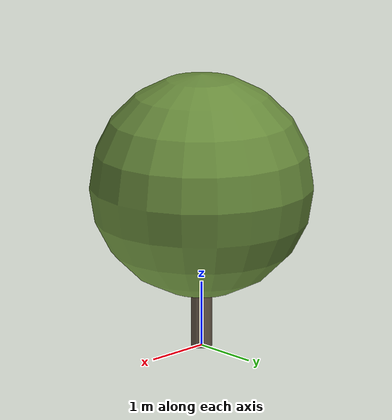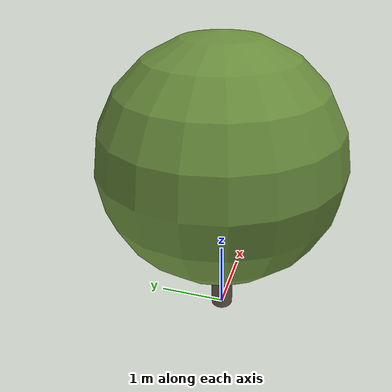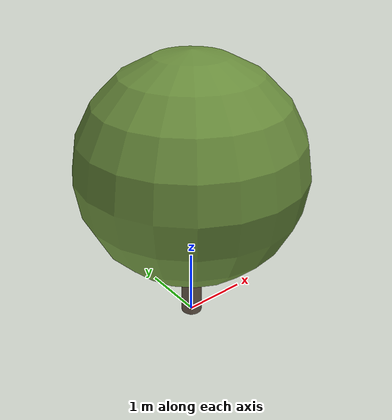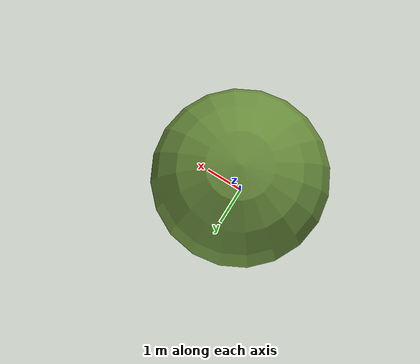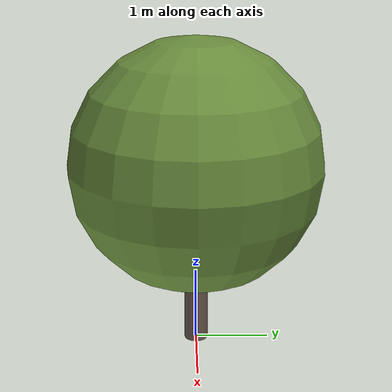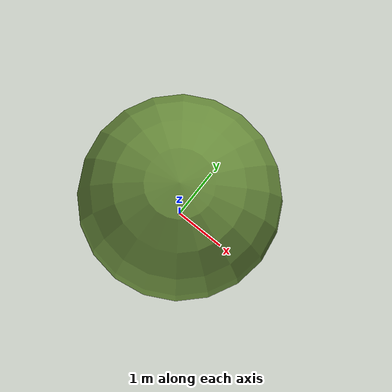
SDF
<?xml version="1.0" ?>
<sdf version="1.10">
  <model name="olivier_provence_13">
    <static>true</static>

    <!-- Tronc -->
    <link name="trunk">
      <pose>0 0 1.0070360573984578 0 0 0</pose>
      <visual name="trunk_visual">
        <geometry>
          <cylinder>
            <radius>0.15936799181511213</radius>
            <length>2.0140721147969156</length>
          </cylinder>
        </geometry>
        <material>
          <ambient>0.42 0.36 0.30 1</ambient>
          <diffuse>0.42 0.36 0.30 1</diffuse>
          <specular>0.1 0.1 0.1 1</specular>
        </material>
      </visual>
      <collision name="trunk_collision">
        <geometry>
          <cylinder>
            <radius>0.15936799181511213</radius>
            <length>2.0140721147969156</length>
          </cylinder>
        </geometry>
      </collision>
    </link>

    <!-- Feuillage -->
    <link name="crown">
      <pose>0 0 2.520470295759271 0 0 0</pose>
      <visual name="crown_visual">
        <geometry>
          <sphere>
              <radius>1.687993936541184</radius>
            </sphere>
        </geometry>
        <material>
          <ambient>0.42 0.56 0.24 1</ambient>
          <diffuse>0.42 0.56 0.24 1</diffuse>
          <specular>0.1 0.1 0.1 1</specular>
        </material>
      </visual>
      <collision name="crown_collision">
        <geometry>
          <sphere>
            <radius>1.3503951492329473</radius>
          </sphere>
        </geometry>
      </collision>
    </link>

    <!-- Joint tronc-feuillage -->
    <joint name="trunk_crown_joint" type="fixed">
      <parent>trunk</parent>
      <child>crown</child>
    </joint>

  </model>
</sdf>
